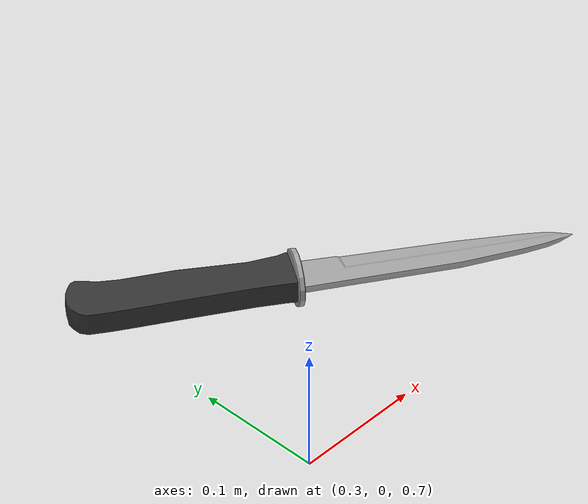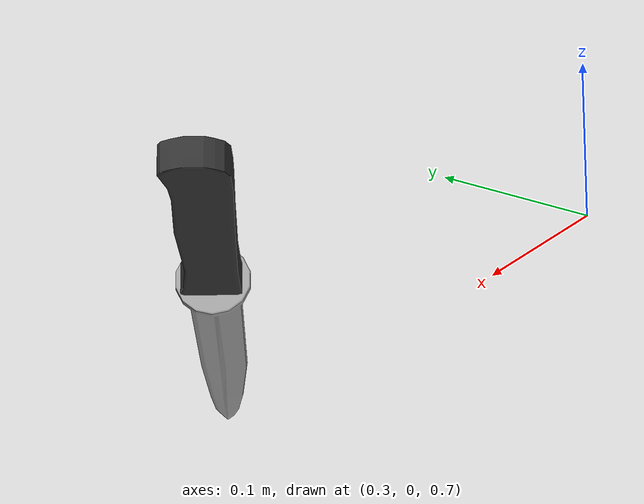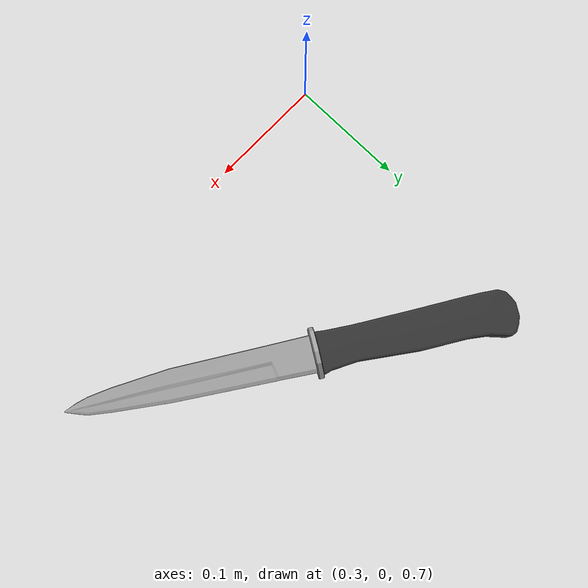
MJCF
<mujoco model="untitled">
  <compiler angle="radian" meshdir=".." autolimits="true"/>

  <asset>
    <mesh name="blade" file="assets/blade.stl"   scale="0.7 0.7 0.7"/>
    <mesh name="handle" file="assets/handle.stl" scale="0.7 0.7 0.7"/>
    <material name="blade" rgba="0.63 0.63 0.63 1" specular="1" shininess="1"/>
    <material name="handle" rgba="0.2 0.2 0.2 1" specular="1" shininess="1"/>
  </asset>

  <default>
    <default class="sword_collision">
      <geom contype="1" conaffinity="1" condim="4" friction="0.5 0.05 0.0001"/>
    </default>
  </default>

  <worldbody>
    <body name="sword" pos="0.4 0.2 0.68" euler="0 0 1.0">
      <geom type="mesh" mesh="blade" material="blade" contype="0" conaffinity="0" mass="0.0"/>
      <geom type="mesh" mesh="handle" material="handle" contype="0" conaffinity="0" mass="0.0"/>
    </body>
  </worldbody>
</mujoco>
